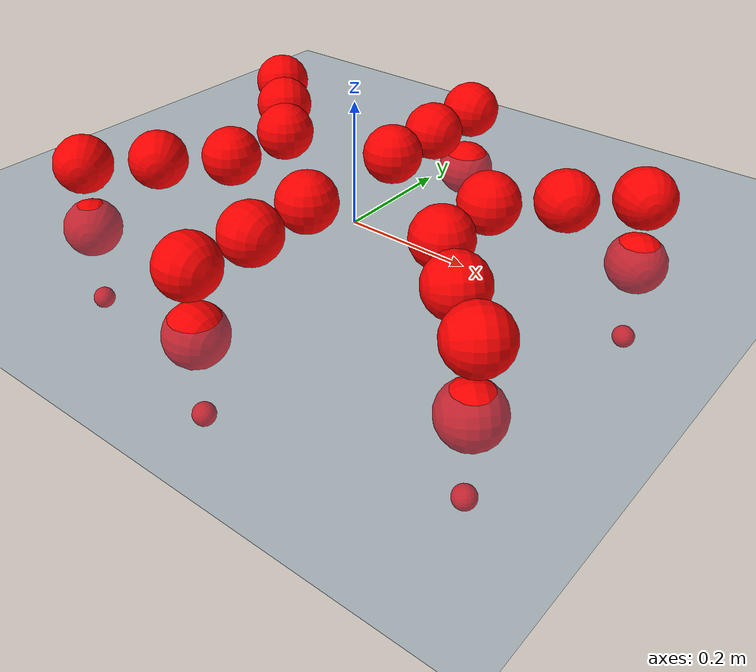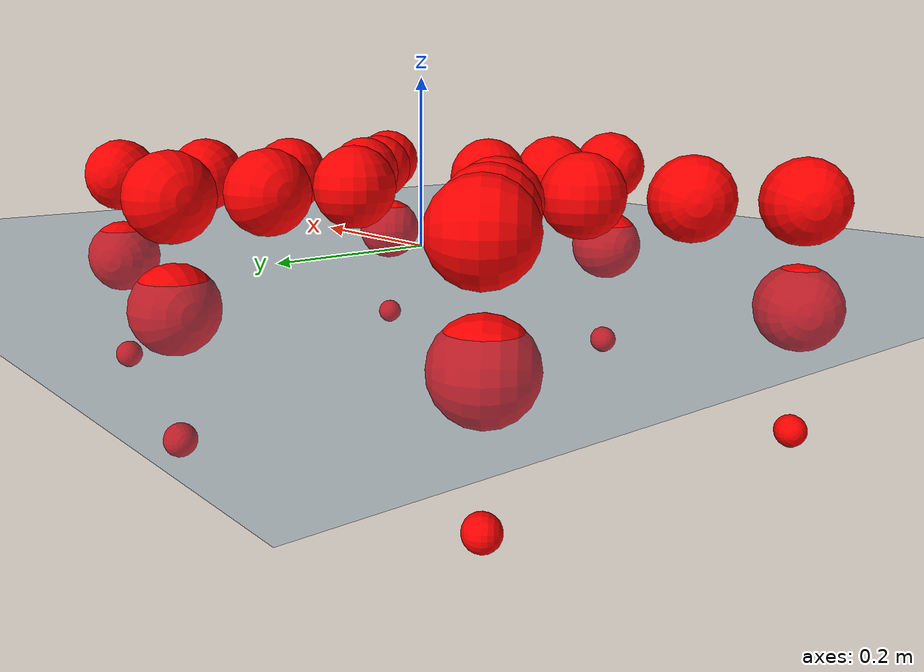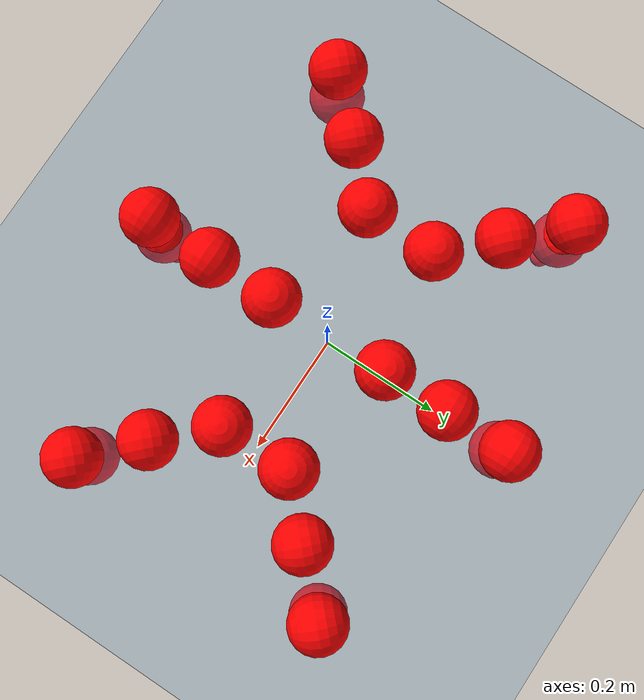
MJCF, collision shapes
<mujoco model="Golem">
  <compiler angle="radian" assetdir="assets" balanceinertia="true" inertiafromgeom="false"/>

  <option timestep="0.005" density="1.2" viscosity="2e-05"/>

  <size nkey="1"/>

  <visual>
    <quality shadowsize="8192"/>
    <map shadowclip="0.5"/>
  </visual>

  <default>
    <default class="/">
      <joint armature="0.01" damping="0.01" frictionloss="0.01"/>
      <geom contype="0" conaffinity="0" group="1" solref="-1000 -80"/>
      <site size="0.01 0.005 0.005" group="5"/>
      <general forcelimited="true" biastype="affine" gainprm="25" biasprm="0 -25 -0.5"/>
      <default class="visual">
        <geom type="mesh" group="2"/>
      </default>
      <default class="collision">
        <geom group="3"/>
      </default>
      <default class="foot">
        <geom size="0.01 0 0" condim="6" group="4" priority="1" solimp="0.015 1 0.01"/>
      </default>
      <default class="reward_collision_sphere">
        <geom group="5" rgba="1 0 0 1"/>
      </default>
    </default>
  </default>

  <asset>
    <texture type="skybox" colorspace="auto" name="//unnamed_texture_0" builtin="gradient" rgb1="0.95 0.95 0.95" rgb2="0.95 0.95 0.95" width="100" height="600"/>
    <texture type="2d" colorspace="auto" name="texplane" builtin="checker" rgb1="0.345 0.575 0.748" rgb2="0.345 0.575 0.748" markrgb="1 1 1" width="512" height="512"/>
    <material name="MatPlane" class="/" texture="texplane" texuniform="true" texrepeat="2 2" specular="0.9"/>
    <mesh name="body" class="/" file="body.stl" scale="0.001 0.001 0.001"/>
    <mesh name="coxa" class="/" file="coxa.stl" scale="0.001 0.001 0.001"/>
    <mesh name="femur" class="/" file="femur.stl" scale="0.001 0.001 0.001"/>
    <mesh name="tibia" class="/" file="tibia.stl" scale="0.001 0.001 0.001"/>
    <mesh name="tarsus" class="/" file="tarsus.stl" scale="0.001 0.001 0.001"/>
  </asset>

  <worldbody>
    <geom name="floor" class="/" size="100 100 0.125" type="plane" group="0" material="MatPlane"/>
    <light name="toplight_shadow" class="/" pos="0 0 5" dir="0.0990148 0.0990148 -0.990148" type="directional" ambient="0.04 0.04 0.04" diffuse="0.55 0.55 0.55" specular="0.12 0.12 0.12"/>
    <light name="toplight_fill" class="/" pos="0 0 5" dir="0.0990148 0.0990148 -0.990148" type="directional" castshadow="false" ambient="0.04 0.04 0.04" diffuse="0.3 0.3 0.3" specular="0.08 0.08 0.08"/>
    <body name="trunk" pos="-0.00225198 0.00049393 -0.0027573" quat="1 0.000432265 0.00016976 0.000142956">
      <inertial pos="-0.000468646 -0.00262526 -0.00094099" quat="1 -0.000144765 5.73673e-05 -0.000610872" mass="5.99765" diaginertia="0.0325968 0.0141602 0.0239967"/>
      <joint name="//unnamed_joint_0" type="free"/>
      <geom name="//unnamed_geom_1" class="/" pos="0 0 0.0766715" quat="1 0 0 0" type="mesh" rgba="0.9 0.9 0.9 1" mesh="body"/>
      <site name="imu" class="/" pos="0.180554 -0.0126154 0.105847" size="0.0118398"/>
      <camera name="track" class="/" pos="0 -2.14517 0" quat="0.707107 0.707107 0 0" mode="trackcom"/>
      <camera name="ego_camera" class="/" pos="0.166579 0 0.119799" quat="-0.5 -0.5 0.5 0.5"/>
      <body name="coxa_RR" pos="-0.228802 -0.0874938 0.0769805" quat="0.382663 -0.000497182 -0.000132481 -0.923888">
        <inertial pos="-0.00223011 0.000114763 -0.00259194" quat="0.999925 -0.00997245 0.00463366 -0.00535061" mass="0.326079" diaginertia="0.0341524 0.0140361 0.0241618"/>
        <joint name="coxa_joint_RR" class="/" pos="0 0 0" axis="0.00142531 0.00865886 -0.999961" range="-3.19395 3.14257" armature="0.0101546" damping="0" frictionloss="0.0102657"/>
        <geom name="//unnamed_geom_2" class="/" type="mesh" rgba="0.2 0.2 0.2 1" mesh="coxa"/>
        <geom name="//unnamed_geom_3" class="reward_collision_sphere" size="0.0473594" pos="-0.0384413 0 0"/>
        <body name="femur_RR" pos="0.0763995 -0.00173932 -0.00188121" quat="0.499852 -0.499663 0.500421 0.500064">
          <inertial pos="-0.00287125 0.000229455 -0.000845278" quat="0.999974 -0.00691265 0.0016128 -0.00101891" mass="0.331916" diaginertia="0.0349467 0.0144675 0.0244652"/>
          <joint name="femur_joint_RR" class="/" pos="0 0 0" axis="0.00425758 -0.0127997 -0.999909" range="-3.11549 3.13773" armature="0.0132609" damping="0.0215095" frictionloss="0.0112891"/>
          <geom name="//unnamed_geom_4" class="/" type="mesh" rgba="0.9 0.9 0.9 1" mesh="femur"/>
          <geom name="//unnamed_geom_5" class="reward_collision_sphere" size="0.0473594"/>
          <body name="tibia_RR" pos="0.00143415 -0.116675 0.00127724" quat="-2.59908e-05 1 0.00014658 -0.000147533">
            <inertial pos="0.00260749 0.000974417 -0.000775984" quat="1 2.79617e-05 0.000585965 -2.93999e-05" mass="0.344803" diaginertia="0.0343731 0.014085 0.0247447"/>
            <joint name="tibia_joint_RR" class="/" pos="0 0 0" axis="-0.000920945 0.00032068 1" stiffness="0.00302275" range="-3.13864 3.13643" armature="0.0117357" damping="0.0108214" frictionloss="0.010374"/>
            <geom name="//unnamed_geom_6" class="/" type="mesh" rgba="0.2 0.2 0.2 1" mesh="tibia"/>
            <geom name="//unnamed_geom_7" class="reward_collision_sphere" size="0.0473594"/>
            <body name="tarsus_RR" pos="0.114004 -0.000216534 -0.000572507" quat="1 -6.79518e-06 1.62606e-05 1.86037e-06">
              <inertial pos="0.0745736 0.000486156 0.000153893" quat="0.499304 0.496644 0.510907 0.492965" mass="0.336938" diaginertia="0.0344298 0.0137092 0.0247883"/>
              <joint name="tarsus_joint_RR" class="/" pos="0 0 0" axis="0.0124549 0.00940025 0.999878" range="-3.12519 3.11676" armature="0.0114639" damping="0.0148768" frictionloss="0.0112543"/>
              <geom name="//unnamed_geom_8" class="/" type="mesh" rgba="0.9 0.9 0.9 1" mesh="tarsus"/>
              <geom name="foot_1" class="foot" size="0.0128306" pos="0.143514 0 0" quat="0 -0.707107 0 0.707107"/>
              <geom name="//unnamed_geom_10" class="reward_collision_sphere" size="0.0473594"/>
              <geom name="//unnamed_geom_11" class="reward_collision_sphere" size="0.0177598" pos="0.137748 0 0"/>
              <site name="foot_1" class="foot" pos="0.143514 0 0" quat="0 -0.707107 0 0.707107" size="0.0118398"/>
            </body>
          </body>
        </body>
      </body>
      <body name="coxa_RM" pos="-0.000452907 -0.143783 0.0817875" quat="0.706546 -0.00116565 2.67587e-06 -0.707666">
        <inertial pos="-0.00053187 -0.00264362 -0.00126846" quat="0.999998 -0.00200691 0.000475963 -0.000362957" mass="0.34065" diaginertia="0.0360596 0.0141846 0.0254013"/>
        <joint name="coxa_joint_RM" class="/" pos="0 0 0" axis="0.0106609 0.00930719 -0.9999" range="-3.16805 3.15767" armature="0.011796" damping="0.0178678" frictionloss="0.011649"/>
        <geom name="//unnamed_geom_12" class="/" type="mesh" rgba="0.2 0.2 0.2 1" mesh="coxa"/>
        <geom name="//unnamed_geom_13" class="reward_collision_sphere" size="0.0473594" pos="-0.0384413 0 0"/>
        <body name="femur_RM" pos="0.0765513 0.00052937 -0.000775145" quat="0.499958 -0.499866 0.500107 0.500069">
          <inertial pos="-9.50031e-06 -0.00278666 0.000932562" quat="1 0.000266971 1.49371e-06 7.60158e-05" mass="0.336819" diaginertia="0.0344432 0.0142549 0.0255588"/>
          <joint name="femur_joint_RM" class="/" pos="0 0 0" axis="-0.0117264 0.00805692 -0.999899" stiffness="0.0104355" range="-3.10047 3.14451" armature="0.0134547" damping="0.0229169" frictionloss="0.0114403"/>
          <geom name="//unnamed_geom_14" class="/" type="mesh" rgba="0.9 0.9 0.9 1" mesh="femur"/>
          <geom name="//unnamed_geom_15" class="reward_collision_sphere" size="0.0473594"/>
          <body name="tibia_RM" pos="-0.00195391 -0.112889 -0.00100477" quat="-0.000455049 0.999999 0.000775256 0.00104127">
            <inertial pos="0.000454772 0.00223277 0.000209824" quat="0.999999 -0.00046669 0.000967208 0.000789443" mass="0.340945" diaginertia="0.0367034 0.0151597 0.0256132"/>
            <joint name="tibia_joint_RM" class="/" pos="0 0 0" axis="-0.000781555 -0.000175866 1" range="-3.08618 3.11916" armature="0.0113794" damping="0" frictionloss="0.013493"/>
            <geom name="//unnamed_geom_16" class="/" type="mesh" rgba="0.2 0.2 0.2 1" mesh="tibia"/>
            <geom name="//unnamed_geom_17" class="reward_collision_sphere" size="0.0473594"/>
            <body name="tarsus_RM" pos="0.110279 -0.00259591 -9.58998e-05" quat="1 -2.59226e-05 -0.000318548 0.000165062">
              <inertial pos="0.0749908 -0.000628256 0.00244682" quat="0.495144 0.495873 0.503134 0.505765" mass="0.343021" diaginertia="0.0367507 0.0146418 0.0256519"/>
              <joint name="tarsus_joint_RM" class="/" pos="0 0 0" axis="0.0114317 0.00305552 0.99993" range="-3.15714 3.14307" armature="0.0115146" damping="0.0131206" frictionloss="0.0106824"/>
              <geom name="//unnamed_geom_18" class="/" type="mesh" rgba="0.9 0.9 0.9 1" mesh="tarsus"/>
              <geom name="foot_2" class="foot" size="0.0129041" pos="0.143514 0 0" quat="0 -0.707107 0 0.707107"/>
              <geom name="//unnamed_geom_20" class="reward_collision_sphere" size="0.0473594"/>
              <geom name="//unnamed_geom_21" class="reward_collision_sphere" size="0.0177598" pos="0.137748 0 0"/>
              <site name="foot_2" class="foot" pos="0.143514 0 0" quat="0 -0.707107 0 0.707107" size="0.0118398"/>
            </body>
          </body>
        </body>
      </body>
      <body name="coxa_RF" pos="0.231266 -0.0860923 0.0767298" quat="0.9241 -0.00112937 3.14231e-05 -0.38215">
        <inertial pos="0.00283013 0.00151834 0.00151393" quat="0.999935 -0.00846446 -0.00228162 0.00729206" mass="0.333794" diaginertia="0.0345734 0.0149109 0.025961"/>
        <joint name="coxa_joint_RF" class="/" pos="0 0 0" axis="0.0107841 -0.0116819 -0.999874" range="-3.13679 3.1809" armature="0.0118399" damping="0.00192076" frictionloss="0.0120995"/>
        <geom name="//unnamed_geom_22" class="/" type="mesh" rgba="0.2 0.2 0.2 1" mesh="coxa"/>
        <geom name="//unnamed_geom_23" class="reward_collision_sphere" size="0.0473594" pos="-0.0384413 0 0"/>
        <body name="femur_RF" pos="0.0758253 -0.00216748 -0.00263035" quat="0.500254 -0.500173 0.499579 0.499993">
          <inertial pos="0.000808757 1.31054e-05 0.00159391" quat="0.999942 -0.00737407 -0.000848379 0.00783238" mass="0.33504" diaginertia="0.0344696 0.0148277 0.0258134"/>
          <joint name="femur_joint_RF" class="/" pos="0 0 0" axis="0.00408628 -0.000491505 -0.999992" range="-3.13517 3.17078" armature="0.0118954" damping="0.00673765" frictionloss="0.0106958"/>
          <geom name="//unnamed_geom_24" class="/" type="mesh" rgba="0.9 0.9 0.9 1" mesh="femur"/>
          <geom name="//unnamed_geom_25" class="reward_collision_sphere" size="0.0473594"/>
          <body name="tibia_RF" pos="-0.00202478 -0.116398 0.00297885" quat="0.000107409 1 5.96907e-05 0.000318076">
            <inertial pos="0.00226544 -0.00268015 0.00019135" quat="0.999998 -0.000290509 -0.0017586 -0.00122592" mass="0.320704" diaginertia="0.0344609 0.0138081 0.0245484"/>
            <joint name="tibia_joint_RF" class="/" pos="0 0 0" axis="-0.00657775 -0.00458355 0.999968" range="-3.13685 3.14177" armature="0.0126528" damping="0.0162884" frictionloss="0.0121096"/>
            <geom name="//unnamed_geom_26" class="/" type="mesh" rgba="0.2 0.2 0.2 1" mesh="tibia"/>
            <geom name="//unnamed_geom_27" class="reward_collision_sphere" size="0.0473594"/>
            <body name="tarsus_RF" pos="0.111645 0.000278618 0.00155306" quat="0.999999 -0.00127078 3.0181e-05 -0.000437312">
              <inertial pos="0.0802976 -0.000722309 0.00253635" quat="0.501275 0.509259 0.496393 0.492923" mass="0.331745" diaginertia="0.0344696 0.013887 0.0254241"/>
              <joint name="tarsus_joint_RF" class="/" pos="0 0 0" axis="0.00678586 0.00295084 0.999973" range="-3.17569 3.13834" armature="0.0118881" damping="0.00871293" frictionloss="0.010478"/>
              <geom name="//unnamed_geom_28" class="/" type="mesh" rgba="0.9 0.9 0.9 1" mesh="tarsus"/>
              <geom name="foot_3" class="foot" size="0.0122409" pos="0.143514 0 0" quat="0 -0.707107 0 0.707107"/>
              <geom name="//unnamed_geom_30" class="reward_collision_sphere" size="0.0473594"/>
              <geom name="//unnamed_geom_31" class="reward_collision_sphere" size="0.0177598" pos="0.137748 0 0"/>
              <site name="foot_3" class="foot" pos="0.143514 0 0" quat="0 -0.707107 0 0.707107" size="0.0118398"/>
            </body>
          </body>
        </body>
      </body>
      <body name="coxa_LR" pos="-0.226977 0.0900265 0.0776366" quat="0.383541 0.000658598 0.000680665 0.923524">
        <inertial pos="-0.000867102 -0.00172968 0.00114758" quat="0.999999 -0.000732828 -0.00046248 -0.000655785" mass="0.333326" diaginertia="0.0358325 0.0147537 0.0254813"/>
        <joint name="coxa_joint_LR" class="/" pos="0 0 0" axis="0.00814066 0.00454746 -0.999957" range="-3.19464 3.18676" armature="0.0101929" damping="0.0210531" frictionloss="0.0118498"/>
        <geom name="//unnamed_geom_32" class="/" type="mesh" rgba="0.2 0.2 0.2 1" mesh="coxa"/>
        <geom name="//unnamed_geom_33" class="reward_collision_sphere" size="0.0473594" pos="-0.0384413 0 0"/>
        <body name="femur_LR" pos="0.0744884 -0.00235002 0.00245416" quat="0.499103 -0.500806 0.500011 0.500078">
          <inertial pos="0.000741848 -0.00290703 0.00195751" quat="0.999915 -0.00905243 0.00935569 -0.000342758" mass="0.340577" diaginertia="0.0351798 0.0144197 0.0248921"/>
          <joint name="femur_joint_LR" class="/" pos="0 0 0" axis="0.00230691 0.00762675 0.999968" stiffness="0.00898741" range="-3.12438 3.13297" armature="0.0116949" damping="0" frictionloss="0.011319"/>
          <geom name="//unnamed_geom_34" class="/" type="mesh" rgba="0.9 0.9 0.9 1" mesh="femur"/>
          <geom name="//unnamed_geom_35" class="reward_collision_sphere" size="0.0473594"/>
          <body name="tibia_LR" pos="-0.000430607 -0.113863 -0.000199723" quat="9.56319e-05 0.999999 0.00116356 0.000679208">
            <inertial pos="0.00278936 -0.00136951 0.0022036" quat="0.999999 -0.000945337 -0.000441335 -0.000884182" mass="0.342862" diaginertia="0.0357615 0.0145829 0.0242133"/>
            <joint name="tibia_joint_LR" class="/" pos="0 0 0" axis="-0.00199504 0.00299359 -0.999994" range="-3.12953 3.11589" armature="0.0102618" damping="0.0135947" frictionloss="0.0115318"/>
            <geom name="//unnamed_geom_36" class="/" type="mesh" rgba="0.2 0.2 0.2 1" mesh="tibia"/>
            <geom name="//unnamed_geom_37" class="reward_collision_sphere" size="0.0473594"/>
            <body name="tarsus_LR" pos="0.112298 0.000366012 -0.00195561" quat="1 -5.3858e-05 -6.10414e-05 -6.10381e-05">
              <inertial pos="0.0759996 -0.00129443 -0.00259035" quat="0.499223 0.500378 0.499972 0.500426" mass="0.329211" diaginertia="0.0344984 0.0141192 0.0255311"/>
              <joint name="tarsus_joint_LR" class="/" pos="0 0 0" axis="-0.00096035 4.90171e-05 -1" range="-3.12324 3.12098" armature="0.0134723" damping="0.0279057" frictionloss="0.0122546"/>
              <geom name="//unnamed_geom_38" class="/" type="mesh" rgba="0.9 0.9 0.9 1" mesh="tarsus"/>
              <geom name="foot_4" class="foot" size="0.0118283" pos="0.143514 0 0" quat="0.707107 0 -0.707107 0"/>
              <geom name="//unnamed_geom_40" class="reward_collision_sphere" size="0.0473594"/>
              <geom name="//unnamed_geom_41" class="reward_collision_sphere" size="0.0177598" pos="0.137748 0 0"/>
              <site name="foot_4" class="foot" pos="0.143514 0 0" quat="0.707107 0 -0.707107 0" size="0.0118398"/>
            </body>
          </body>
        </body>
      </body>
      <body name="coxa_LM" pos="-0.00310462 0.139484 0.0809487" quat="0.707315 -7.22102e-06 -0.000388631 0.706899">
        <inertial pos="0.000954659 0.000410349 0.0030462" quat="0.999915 0.00724596 -0.0108115 -0.000510514" mass="0.327098" diaginertia="0.0336345 0.0140077 0.023781"/>
        <joint name="coxa_joint_LM" class="/" pos="0 0 0" axis="0.00359801 -0.00517833 -0.99998" stiffness="0.00811466" range="-3.13593 3.13314" armature="0.0113934" damping="0" frictionloss="0.0103281"/>
        <geom name="//unnamed_geom_42" class="/" type="mesh" rgba="0.2 0.2 0.2 1" mesh="coxa"/>
        <geom name="//unnamed_geom_43" class="reward_collision_sphere" size="0.0473594" pos="-0.0384413 0 0"/>
        <body name="femur_LM" pos="0.0736532 0.000534729 0.000965794" quat="0.499885 -0.500054 0.500005 0.500055">
          <inertial pos="0.0023513 0.000403213 -0.00274784" quat="0.999925 -0.0019521 0.0118647 0.00215445" mass="0.330032" diaginertia="0.0360666 0.0146616 0.0256764"/>
          <joint name="femur_joint_LM" class="/" pos="0 0 0" axis="-0.000281396 -0.000880747 1" range="-3.13758 3.08226" armature="0.0106214" damping="0.0234245" frictionloss="0.011869"/>
          <geom name="//unnamed_geom_44" class="/" type="mesh" rgba="0.9 0.9 0.9 1" mesh="femur"/>
          <geom name="//unnamed_geom_45" class="reward_collision_sphere" size="0.0473594"/>
          <body name="tibia_LM" pos="-0.00223178 -0.111022 0.000157318" quat="0.000222523 0.999999 -0.000707892 0.000740613">
            <inertial pos="-0.000121363 0.000179943 -0.00019716" quat="0.999925 0.0054362 -0.0109685 -0.000469849" mass="0.334645" diaginertia="0.0340812 0.0139098 0.0252783"/>
            <joint name="tibia_joint_LM" class="/" pos="0 0 0" axis="0.000642474 -2.52315e-05 -1" stiffness="0.00779838" range="-3.09487 3.08302" armature="0.0105862" damping="0.0115016" frictionloss="0.0126747"/>
            <geom name="//unnamed_geom_46" class="/" type="mesh" rgba="0.2 0.2 0.2 1" mesh="tibia"/>
            <geom name="//unnamed_geom_47" class="reward_collision_sphere" size="0.0473594"/>
            <body name="tarsus_LM" pos="0.113335 0.000279218 -0.00308235" quat="0.999999 -0.0013322 0.00026985 -0.000360377">
              <inertial pos="0.0756122 -0.00016433 -0.00243542" quat="0.500814 0.501411 0.495138 0.502605" mass="0.342483" diaginertia="0.0342713 0.0141887 0.0244516"/>
              <joint name="tarsus_joint_LM" class="/" pos="0 0 0" axis="-0.000819212 0.00762382 -0.999971" range="-3.10333 3.13933" armature="0.0133048" damping="0.0104481" frictionloss="0.0117097"/>
              <geom name="//unnamed_geom_48" class="/" type="mesh" rgba="0.9 0.9 0.9 1" mesh="tarsus"/>
              <geom name="foot_5" class="foot" size="0.0112209" pos="0.143514 0 0" quat="0.707107 0 -0.707107 0"/>
              <geom name="//unnamed_geom_50" class="reward_collision_sphere" size="0.0473594"/>
              <geom name="//unnamed_geom_51" class="reward_collision_sphere" size="0.0177598" pos="0.137748 0 0"/>
              <site name="foot_5" class="foot" pos="0.143514 0 0" quat="0.707107 0 -0.707107 0" size="0.0118398"/>
            </body>
          </body>
        </body>
      </body>
      <body name="coxa_LF" pos="0.228846 0.0888975 0.0796105" quat="0.924313 0.000244124 0.000405571 0.381634">
        <inertial pos="0.00038843 0.000796088 -0.000656555" quat="0.999994 -0.00182095 0.00296656 -0.000715921" mass="0.336575" diaginertia="0.0344951 0.0137252 0.0239586"/>
        <joint name="coxa_joint_LF" class="/" pos="0 0 0" axis="-0.0092691 0.00264097 -0.999954" range="-3.1 3.14391" armature="0.0134201" damping="0.0129229" frictionloss="0.0110675"/>
        <geom name="//unnamed_geom_52" class="/" type="mesh" rgba="0.2 0.2 0.2 1" mesh="coxa"/>
        <geom name="//unnamed_geom_53" class="reward_collision_sphere" size="0.0473594" pos="-0.0384413 0 0"/>
        <body name="femur_LF" pos="0.0756263 -0.00163342 -0.00142193" quat="0.500265 -0.499765 0.499637 0.500332">
          <inertial pos="-0.000740073 0.00237985 -0.00079022" quat="0.999957 -0.00258513 0.0065894 0.00598938" mass="0.344903" diaginertia="0.0368263 0.0145923 0.0249095"/>
          <joint name="femur_joint_LF" class="/" pos="0 0 0" axis="-0.00467517 0.0117896 0.99992" stiffness="0.0139108" range="-3.1705 3.14109" armature="0.0132094" damping="0.005874" frictionloss="0.0116068"/>
          <geom name="//unnamed_geom_54" class="/" type="mesh" rgba="0.9 0.9 0.9 1" mesh="femur"/>
          <geom name="//unnamed_geom_55" class="reward_collision_sphere" size="0.0473594"/>
          <body name="tibia_LF" pos="0.00213338 -0.118404 -0.000300941" quat="-0.000371049 1 1.23631e-06 -0.000208948">
            <inertial pos="6.47328e-05 0.000110852 -0.00108233" quat="0.999921 -0.00147618 -0.00504912 0.0114491" mass="0.328188" diaginertia="0.0338482 0.0144484 0.0240878"/>
            <joint name="tibia_joint_LF" class="/" pos="0 0 0" axis="0.00665897 0.0115192 -0.999911" stiffness="0.00587881" range="-3.09501 3.13625" armature="0.010991" damping="0" frictionloss="0.0104027"/>
            <geom name="//unnamed_geom_56" class="/" type="mesh" rgba="0.2 0.2 0.2 1" mesh="tibia"/>
            <geom name="//unnamed_geom_57" class="reward_collision_sphere" size="0.0473594"/>
            <body name="tarsus_LF" pos="0.110224 0.00199976 0.00157964" quat="1 -0.000152806 5.17982e-05 7.40714e-05">
              <inertial pos="0.0746641 -0.00146694 0.000116669" quat="0.497154 0.504725 0.496573 0.501504" mass="0.327075" diaginertia="0.0344069 0.0140548 0.0240669"/>
              <joint name="tarsus_joint_LF" class="/" pos="0 0 0" axis="-0.00118153 -0.00245716 -0.999996" stiffness="0.000649584" range="-3.16336 3.14141" armature="0.0135663" damping="0.0223328" frictionloss="0.0134254"/>
              <geom name="//unnamed_geom_58" class="/" type="mesh" rgba="0.9 0.9 0.9 1" mesh="tarsus"/>
              <geom name="foot_6" class="foot" size="0.012794" pos="0.143514 0 0" quat="0.707107 0 -0.707107 0"/>
              <geom name="//unnamed_geom_60" class="reward_collision_sphere" size="0.0473594"/>
              <geom name="//unnamed_geom_61" class="reward_collision_sphere" size="0.0177598" pos="0.137748 0 0"/>
              <site name="foot_6" class="foot" pos="0.143514 0 0" quat="0.707107 0 -0.707107 0" size="0.0118398"/>
            </body>
          </body>
        </body>
      </body>
    </body>
  </worldbody>

  <contact>
    <pair class="/" geom1="floor" geom2="foot_1" name="//unnamed_contact_0"/>
    <pair class="/" geom1="floor" geom2="foot_2" name="//unnamed_contact_1"/>
    <pair class="/" geom1="floor" geom2="foot_3" name="//unnamed_contact_2"/>
    <pair class="/" geom1="floor" geom2="foot_4" name="//unnamed_contact_3"/>
    <pair class="/" geom1="floor" geom2="foot_5" name="//unnamed_contact_4"/>
    <pair class="/" geom1="floor" geom2="foot_6" name="//unnamed_contact_5"/>
  </contact>

  <actuator>
    <general name="coxa_joint_RR" class="/" joint="coxa_joint_RR" forcerange="-8.09326 8.09326" gainprm="28.4607" biasprm="0 -28.4607 -0.617502"/>
    <general name="femur_joint_RR" class="/" joint="femur_joint_RR" forcerange="-8.41453 8.41453" gainprm="28.4607" biasprm="0 -28.4607 -0.617502"/>
    <general name="tibia_joint_RR" class="/" joint="tibia_joint_RR" forcerange="-8.55493 8.55493" gainprm="28.4607" biasprm="0 -28.4607 -0.617502"/>
    <general name="tarsus_joint_RR" class="/" joint="tarsus_joint_RR" forcerange="-8.52521 8.52521" gainprm="28.4607" biasprm="0 -28.4607 -0.617502"/>
    <general name="coxa_joint_RM" class="/" joint="coxa_joint_RM" forcerange="-8.79222 8.79222" gainprm="28.4607" biasprm="0 -28.4607 -0.617502"/>
    <general name="femur_joint_RM" class="/" joint="femur_joint_RM" forcerange="-8.40752 8.40752" gainprm="28.4607" biasprm="0 -28.4607 -0.617502"/>
    <general name="tibia_joint_RM" class="/" joint="tibia_joint_RM" forcerange="-8.50291 8.50291" gainprm="28.4607" biasprm="0 -28.4607 -0.617502"/>
    <general name="tarsus_joint_RM" class="/" joint="tarsus_joint_RM" forcerange="-8.05116 8.05116" gainprm="28.4607" biasprm="0 -28.4607 -0.617502"/>
    <general name="coxa_joint_RF" class="/" joint="coxa_joint_RF" forcerange="-8.82489 8.82489" gainprm="28.4607" biasprm="0 -28.4607 -0.617502"/>
    <general name="femur_joint_RF" class="/" joint="femur_joint_RF" forcerange="-8.60835 8.60835" gainprm="28.4607" biasprm="0 -28.4607 -0.617502"/>
    <general name="tibia_joint_RF" class="/" joint="tibia_joint_RF" forcerange="-8.6338 8.6338" gainprm="28.4607" biasprm="0 -28.4607 -0.617502"/>
    <general name="tarsus_joint_RF" class="/" joint="tarsus_joint_RF" forcerange="-8.02158 8.02158" gainprm="28.4607" biasprm="0 -28.4607 -0.617502"/>
    <general name="coxa_joint_LR" class="/" joint="coxa_joint_LR" forcerange="-7.81778 7.81778" gainprm="28.4607" biasprm="0 -28.4607 -0.617502"/>
    <general name="femur_joint_LR" class="/" joint="femur_joint_LR" forcerange="-8.29205 8.29205" gainprm="28.4607" biasprm="0 -28.4607 -0.617502"/>
    <general name="tibia_joint_LR" class="/" joint="tibia_joint_LR" forcerange="-8.90955 8.90955" gainprm="28.4607" biasprm="0 -28.4607 -0.617502"/>
    <general name="tarsus_joint_LR" class="/" joint="tarsus_joint_LR" forcerange="-8.54966 8.54966" gainprm="28.4607" biasprm="0 -28.4607 -0.617502"/>
    <general name="coxa_joint_LM" class="/" joint="coxa_joint_LM" forcerange="-8.92086 8.92086" gainprm="28.4607" biasprm="0 -28.4607 -0.617502"/>
    <general name="femur_joint_LM" class="/" joint="femur_joint_LM" forcerange="-7.74104 7.74104" gainprm="28.4607" biasprm="0 -28.4607 -0.617502"/>
    <general name="tibia_joint_LM" class="/" joint="tibia_joint_LM" forcerange="-8.5986 8.5986" gainprm="28.4607" biasprm="0 -28.4607 -0.617502"/>
    <general name="tarsus_joint_LM" class="/" joint="tarsus_joint_LM" forcerange="-9.49343 9.49343" gainprm="28.4607" biasprm="0 -28.4607 -0.617502"/>
    <general name="coxa_joint_LF" class="/" joint="coxa_joint_LF" forcerange="-7.86823 7.86823" gainprm="28.4607" biasprm="0 -28.4607 -0.617502"/>
    <general name="femur_joint_LF" class="/" joint="femur_joint_LF" forcerange="-9.2932 9.2932" gainprm="28.4607" biasprm="0 -28.4607 -0.617502"/>
    <general name="tibia_joint_LF" class="/" joint="tibia_joint_LF" forcerange="-8.7195 8.7195" gainprm="28.4607" biasprm="0 -28.4607 -0.617502"/>
    <general name="tarsus_joint_LF" class="/" joint="tarsus_joint_LF" forcerange="-9.06638 9.06638" gainprm="28.4607" biasprm="0 -28.4607 -0.617502"/>
  </actuator>

  <sensor>
    <gyro site="imu" name="imu_angular_velocity"/>
    <velocimeter site="imu" name="imu_linear_velocity"/>
    <framelinvel objtype="site" objname="foot_1" name="foot_1_global_linear_velocity"/>
    <framelinvel objtype="site" objname="foot_2" name="foot_2_global_linear_velocity"/>
    <framelinvel objtype="site" objname="foot_3" name="foot_3_global_linear_velocity"/>
    <framelinvel objtype="site" objname="foot_4" name="foot_4_global_linear_velocity"/>
    <framelinvel objtype="site" objname="foot_5" name="foot_5_global_linear_velocity"/>
    <framelinvel objtype="site" objname="foot_6" name="foot_6_global_linear_velocity"/>
  </sensor>

  <keyframe>
    <key name="home" qpos="0 0 0.1457 1 0 0 0 0 0 0 0 0 0 0 0 0 0 0 0 0 0 0 0 0 0 0 0 0 0 0 0"/>
  </keyframe>
</mujoco>
